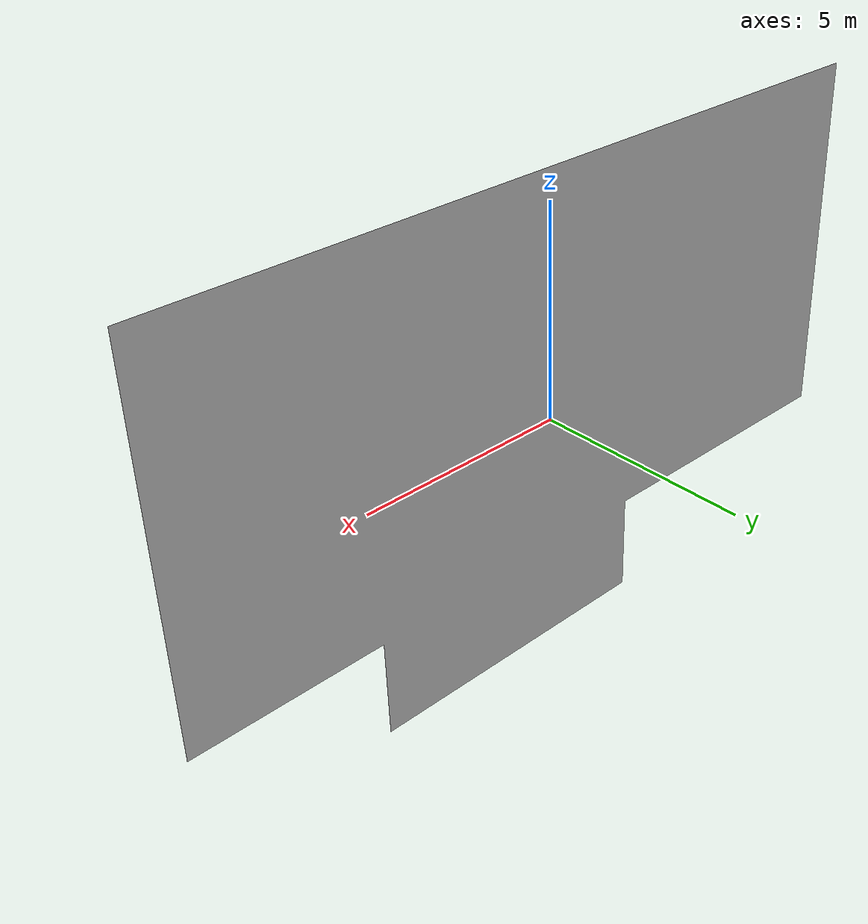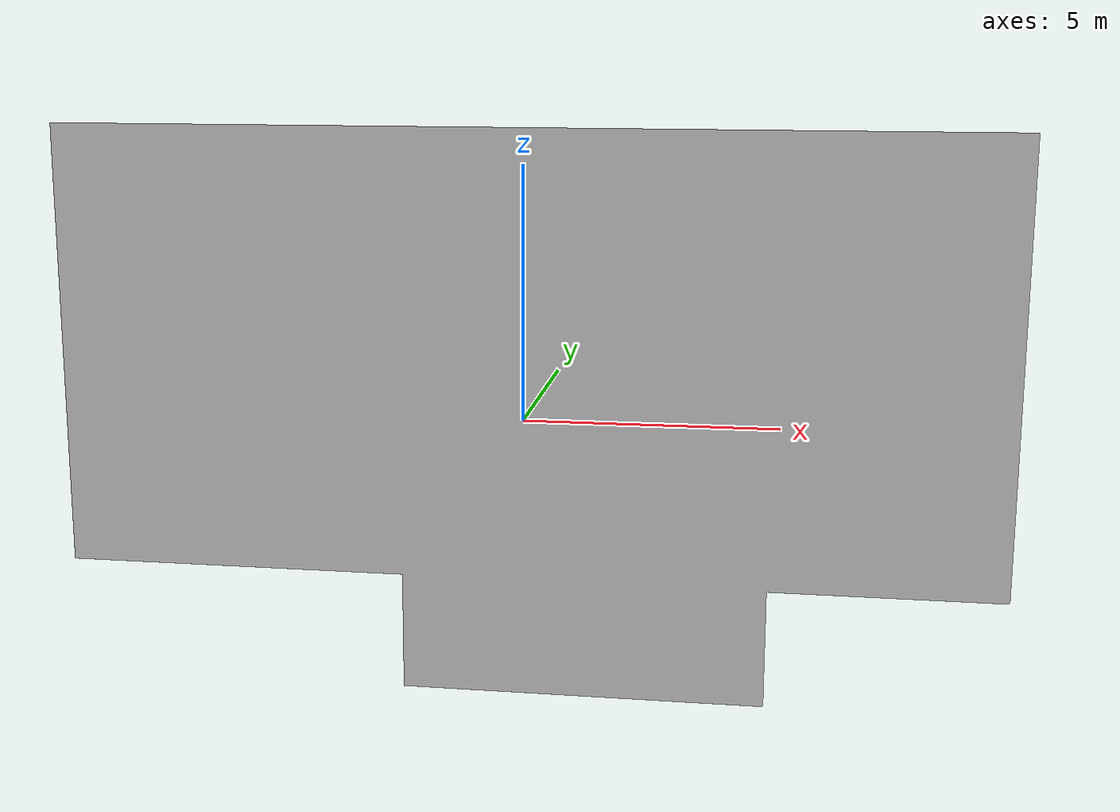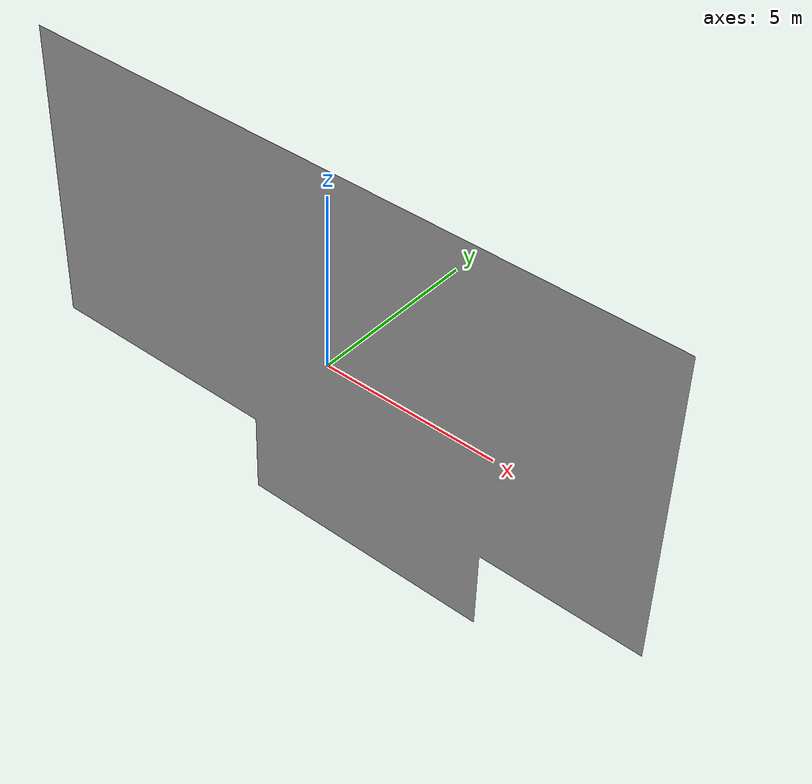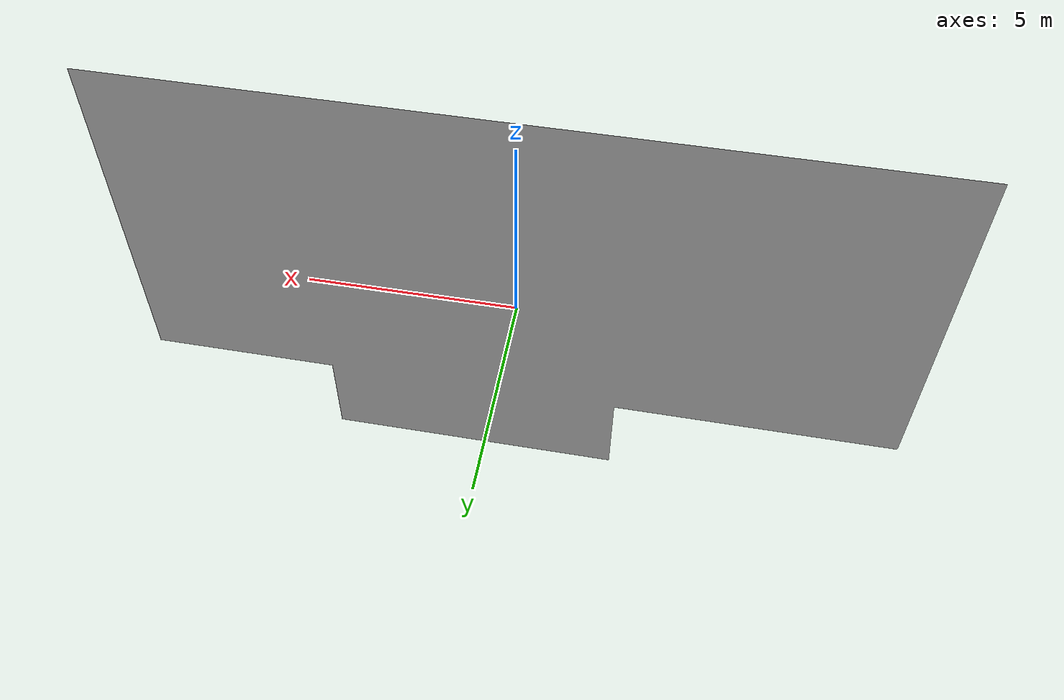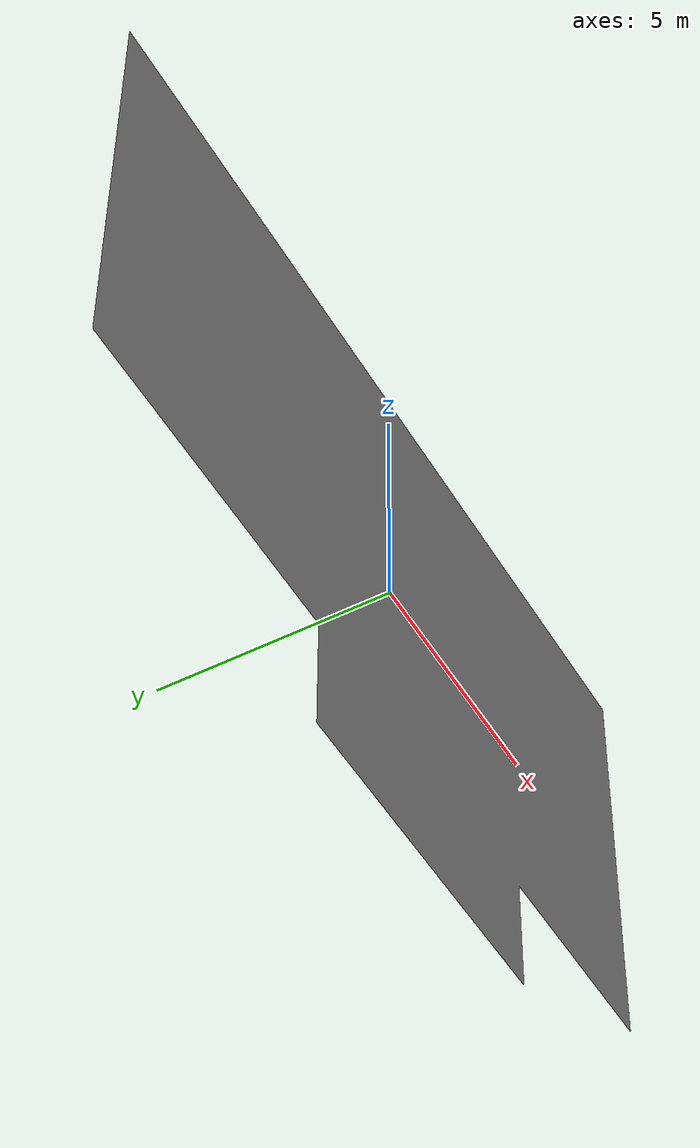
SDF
<?xml version="1.0" ?>
<sdf version="1.6">
  <model name="aws_robomaker_residential_FloorB_01">
    <link name="link">
      <inertial>
	<inertia>
          <ixx>1</ixx>
          <ixy>0</ixy>
          <ixz>0</ixz>
          <iyy>1</iyy>
          <iyz>0</iyz>
          <izz>1</izz>
        </inertia>
        <mass>100</mass>
      </inertial>

      <collision name="collision">
        <geometry>
          <mesh>
<uri>model://aws_robomaker_residential_FloorB_01/meshes/object.obj</uri>
            <scale>1 1 0.9</scale>
          </mesh>
        </geometry>

        <surface>

        <!--
        src: https://www.engineeringtoolbox.com/friction-coefficients-d_778.html
        Wood (Clean & Dry Surfaces): 0.6
        -->
          <friction>
            <ode>
              <mu>0.6</mu>
              <mu2>0.6</mu2>
            </ode>
          </friction>

        </surface>

      </collision>

      <visual name="visual">
	    <geometry>
          <mesh>
<uri>model://aws_robomaker_residential_FloorB_01/meshes/object.obj</uri>
          </mesh>
        </geometry>
      <meta> <layer> 1 </layer></meta>
</visual>
    </link>

	<static>1</static>
  </model>
</sdf>
